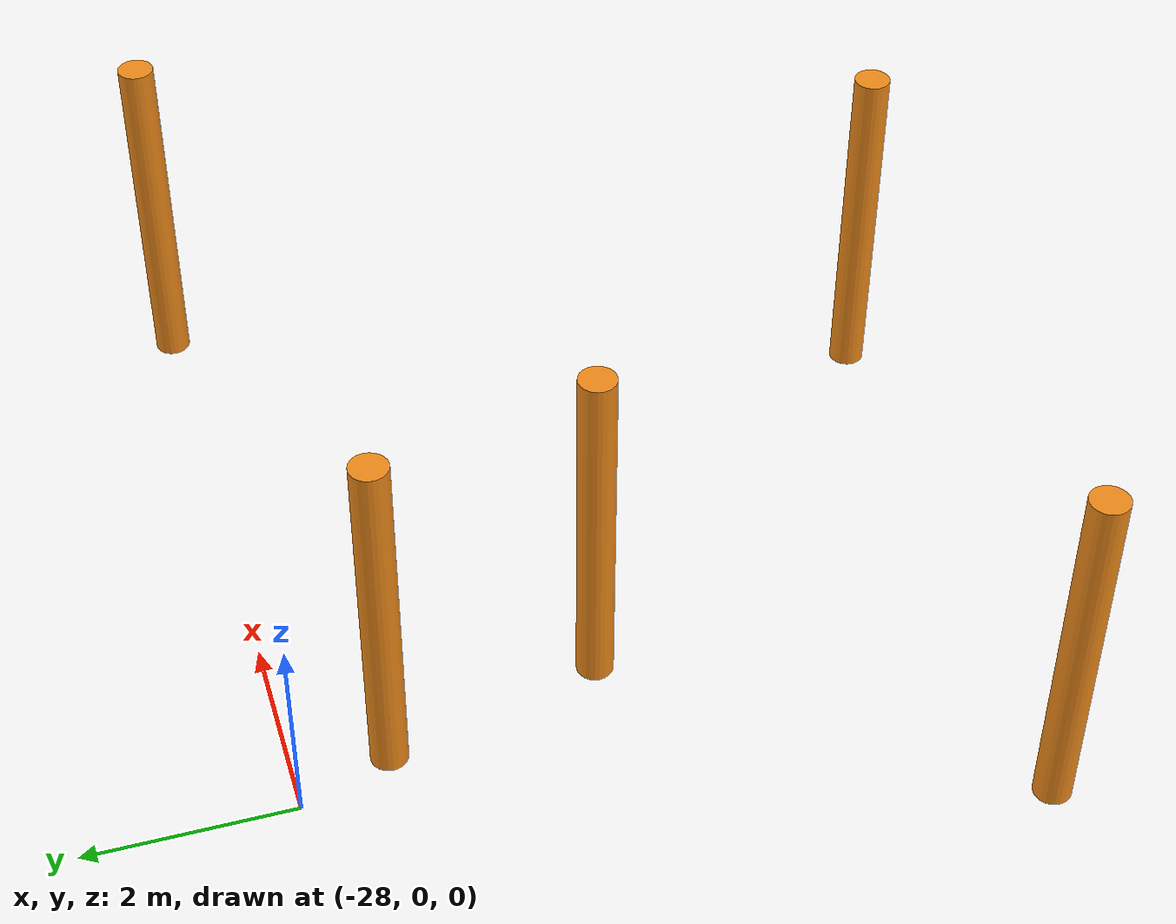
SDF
<sdf version="1.6">
 <model name="Skog">
  <link name="link_1_clone_30">
   <inertial>
    <mass>1</mass>
    <inertia><ixx>0.145833</ixx><ixy>0</ixy><ixz>0</ixz><iyy>0.145833</iyy><iyz>0</iyz><izz>0.125</izz></inertia>
   </inertial>
   <pose>-18.5812 -0.174923 0 0 -0 0</pose>
   <visual name="visual">
    <geometry><cylinder><radius>0.2</radius><length>4</length></cylinder></geometry>
    <material>
     <lighting>1</lighting>
     <script><uri>file://media/materials/scripts/gazebo.material</uri><name>Gazebo/Orange</name></script>
     <shader type="vertex"><normal_map>__default__</normal_map></shader>
     <ambient>0.3 0.3 0.3 1</ambient>
     <diffuse>0.7 0.7 0.7 1</diffuse>
     <specular>0.01 0.01 0.01 1</specular>
     <emissive>0 0 0 1</emissive>
    </material>
   </visual>
   <collision name="collision">
    <geometry><cylinder><radius>0.2</radius><length>4</length></cylinder></geometry>
    <surface>
     <friction>
      <ode><mu>1</mu><mu2>1</mu2><fdir1>0 0 0</fdir1><slip1>0</slip1><slip2>0</slip2></ode>
      <torsional>
       <coefficient>1</coefficient>
       <patch_radius>0</patch_radius>
       <surface_radius>0</surface_radius>
       <use_patch_radius>1</use_patch_radius>
       <ode><slip>0</slip></ode>
      </torsional>
     </friction>
     <bounce><restitution_coefficient>0</restitution_coefficient><threshold>1e+06</threshold></bounce>
     <contact>
      <collide_without_contact>0</collide_without_contact>
      <collide_without_contact_bitmask>1</collide_without_contact_bitmask>
      <collide_bitmask>1</collide_bitmask>
      <ode>
       <soft_cfm>0</soft_cfm>
       <soft_erp>0.2</soft_erp>
       <kp>1e+13</kp>
       <kd>1</kd>
       <max_vel>0.01</max_vel>
       <min_depth>0</min_depth>
      </ode>
      <bullet>
       <split_impulse>1</split_impulse>
       <split_impulse_penetration_threshold>-0.01</split_impulse_penetration_threshold>
       <soft_cfm>0</soft_cfm>
       <soft_erp>0.2</soft_erp>
       <kp>1e+13</kp>
       <kd>1</kd>
      </bullet>
     </contact>
    </surface>
   </collision>
  </link>
  <link name="link_1_clone_31">
   <inertial>
    <mass>1</mass>
    <inertia><ixx>0.145833</ixx><ixy>0</ixy><ixz>0</ixz><iyy>0.145833</iyy><iyz>0</iyz><izz>0.125</izz></inertia>
   </inertial>
   <pose>-21.1425 -8.11004 0 0 -0 0</pose>
   <visual name="visual">
    <geometry><cylinder><radius>0.2</radius><length>4</length></cylinder></geometry>
    <material>
     <lighting>1</lighting>
     <script><uri>file://media/materials/scripts/gazebo.material</uri><name>Gazebo/Orange</name></script>
     <shader type="vertex"><normal_map>__default__</normal_map></shader>
     <ambient>0.3 0.3 0.3 1</ambient>
     <diffuse>0.7 0.7 0.7 1</diffuse>
     <specular>0.01 0.01 0.01 1</specular>
     <emissive>0 0 0 1</emissive>
    </material>
   </visual>
   <collision name="collision">
    <geometry><cylinder><radius>0.2</radius><length>4</length></cylinder></geometry>
    <surface>
     <friction>
      <ode><mu>1</mu><mu2>1</mu2><fdir1>0 0 0</fdir1><slip1>0</slip1><slip2>0</slip2></ode>
      <torsional>
       <coefficient>1</coefficient>
       <patch_radius>0</patch_radius>
       <surface_radius>0</surface_radius>
       <use_patch_radius>1</use_patch_radius>
       <ode><slip>0</slip></ode>
      </torsional>
     </friction>
     <bounce><restitution_coefficient>0</restitution_coefficient><threshold>1e+06</threshold></bounce>
     <contact>
      <collide_without_contact>0</collide_without_contact>
      <collide_without_contact_bitmask>1</collide_without_contact_bitmask>
      <collide_bitmask>1</collide_bitmask>
      <ode>
       <soft_cfm>0</soft_cfm>
       <soft_erp>0.2</soft_erp>
       <kp>1e+13</kp>
       <kd>1</kd>
       <max_vel>0.01</max_vel>
       <min_depth>0</min_depth>
      </ode>
      <bullet>
       <split_impulse>1</split_impulse>
       <split_impulse_penetration_threshold>-0.01</split_impulse_penetration_threshold>
       <soft_cfm>0</soft_cfm>
       <soft_erp>0.2</soft_erp>
       <kp>1e+13</kp>
       <kd>1</kd>
      </bullet>
     </contact>
    </surface>
   </collision>
  </link>
  <link name="link_1_clone_55">
   <inertial>
    <mass>1</mass>
    <inertia><ixx>0.145833</ixx><ixy>0</ixy><ixz>0</ixz><iyy>0.145833</iyy><iyz>0</iyz><izz>0.125</izz></inertia>
   </inertial>
   <pose>-28.2405 -7.5465 0 0 -0 0</pose>
   <visual name="visual">
    <geometry><cylinder><radius>0.2</radius><length>4</length></cylinder></geometry>
    <material>
     <lighting>1</lighting>
     <script><uri>file://media/materials/scripts/gazebo.material</uri><name>Gazebo/Orange</name></script>
     <shader type="vertex"><normal_map>__default__</normal_map></shader>
     <ambient>0.3 0.3 0.3 1</ambient>
     <diffuse>0.7 0.7 0.7 1</diffuse>
     <specular>0.01 0.01 0.01 1</specular>
     <emissive>0 0 0 1</emissive>
    </material>
   </visual>
   <collision name="collision">
    <geometry><cylinder><radius>0.2</radius><length>4</length></cylinder></geometry>
    <surface>
     <friction>
      <ode><mu>1</mu><mu2>1</mu2><fdir1>0 0 0</fdir1><slip1>0</slip1><slip2>0</slip2></ode>
      <torsional>
       <coefficient>1</coefficient>
       <patch_radius>0</patch_radius>
       <surface_radius>0</surface_radius>
       <use_patch_radius>1</use_patch_radius>
       <ode><slip>0</slip></ode>
      </torsional>
     </friction>
     <bounce><restitution_coefficient>0</restitution_coefficient><threshold>1e+06</threshold></bounce>
     <contact>
      <collide_without_contact>0</collide_without_contact>
      <collide_without_contact_bitmask>1</collide_without_contact_bitmask>
      <collide_bitmask>1</collide_bitmask>
      <ode>
       <soft_cfm>0</soft_cfm>
       <soft_erp>0.2</soft_erp>
       <kp>1e+13</kp>
       <kd>1</kd>
       <max_vel>0.01</max_vel>
       <min_depth>0</min_depth>
      </ode>
      <bullet>
       <split_impulse>1</split_impulse>
       <split_impulse_penetration_threshold>-0.01</split_impulse_penetration_threshold>
       <soft_cfm>0</soft_cfm>
       <soft_erp>0.2</soft_erp>
       <kp>1e+13</kp>
       <kd>1</kd>
      </bullet>
     </contact>
    </surface>
   </collision>
  </link>
  <link name="link_1_clone_73">
   <inertial>
    <mass>1</mass>
    <inertia><ixx>0.145833</ixx><ixy>0</ixy><ixz>0</ixz><iyy>0.145833</iyy><iyz>0</iyz><izz>0.125</izz></inertia>
   </inertial>
   <pose>-25.2962 -3.59846 0 0 -0 0</pose>
   <visual name="visual">
    <geometry><cylinder><radius>0.2</radius><length>4</length></cylinder></geometry>
    <material>
     <lighting>1</lighting>
     <script><uri>file://media/materials/scripts/gazebo.material</uri><name>Gazebo/Orange</name></script>
     <shader type="vertex"><normal_map>__default__</normal_map></shader>
     <ambient>0.3 0.3 0.3 1</ambient>
     <diffuse>0.7 0.7 0.7 1</diffuse>
     <specular>0.01 0.01 0.01 1</specular>
     <emissive>0 0 0 1</emissive>
    </material>
   </visual>
   <collision name="collision">
    <geometry><cylinder><radius>0.2</radius><length>4</length></cylinder></geometry>
    <surface>
     <friction>
      <ode><mu>1</mu><mu2>1</mu2><fdir1>0 0 0</fdir1><slip1>0</slip1><slip2>0</slip2></ode>
      <torsional>
       <coefficient>1</coefficient>
       <patch_radius>0</patch_radius>
       <surface_radius>0</surface_radius>
       <use_patch_radius>1</use_patch_radius>
       <ode><slip>0</slip></ode>
      </torsional>
     </friction>
     <bounce><restitution_coefficient>0</restitution_coefficient><threshold>1e+06</threshold></bounce>
     <contact>
      <collide_without_contact>0</collide_without_contact>
      <collide_without_contact_bitmask>1</collide_without_contact_bitmask>
      <collide_bitmask>1</collide_bitmask>
      <ode>
       <soft_cfm>0</soft_cfm>
       <soft_erp>0.2</soft_erp>
       <kp>1e+13</kp>
       <kd>1</kd>
       <max_vel>0.01</max_vel>
       <min_depth>0</min_depth>
      </ode>
      <bullet>
       <split_impulse>1</split_impulse>
       <split_impulse_penetration_threshold>-0.01</split_impulse_penetration_threshold>
       <soft_cfm>0</soft_cfm>
       <soft_erp>0.2</soft_erp>
       <kp>1e+13</kp>
       <kd>1</kd>
      </bullet>
     </contact>
    </surface>
   </collision>
  </link>
  <link name="link_1_clone_74">
   <inertial>
    <mass>1</mass>
    <inertia><ixx>0.145833</ixx><ixy>0</ixy><ixz>0</ixz><iyy>0.145833</iyy><iyz>0</iyz><izz>0.125</izz></inertia>
   </inertial>
   <pose>-25.8982 -1.2092 0 0 -0 0</pose>
   <visual name="visual">
    <geometry><cylinder><radius>0.2</radius><length>4</length></cylinder></geometry>
    <material>
     <lighting>1</lighting>
     <script><uri>file://media/materials/scripts/gazebo.material</uri><name>Gazebo/Orange</name></script>
     <shader type="vertex"><normal_map>__default__</normal_map></shader>
     <ambient>0.3 0.3 0.3 1</ambient>
     <diffuse>0.7 0.7 0.7 1</diffuse>
     <specular>0.01 0.01 0.01 1</specular>
     <emissive>0 0 0 1</emissive>
    </material>
   </visual>
   <collision name="collision">
    <geometry><cylinder><radius>0.2</radius><length>4</length></cylinder></geometry>
    <surface>
     <friction>
      <ode><mu>1</mu><mu2>1</mu2><fdir1>0 0 0</fdir1><slip1>0</slip1><slip2>0</slip2></ode>
      <torsional>
       <coefficient>1</coefficient>
       <patch_radius>0</patch_radius>
       <surface_radius>0</surface_radius>
       <use_patch_radius>1</use_patch_radius>
       <ode><slip>0</slip></ode>
      </torsional>
     </friction>
     <bounce><restitution_coefficient>0</restitution_coefficient><threshold>1e+06</threshold></bounce>
     <contact>
      <collide_without_contact>0</collide_without_contact>
      <collide_without_contact_bitmask>1</collide_without_contact_bitmask>
      <collide_bitmask>1</collide_bitmask>
      <ode>
       <soft_cfm>0</soft_cfm>
       <soft_erp>0.2</soft_erp>
       <kp>1e+13</kp>
       <kd>1</kd>
       <max_vel>0.01</max_vel>
       <min_depth>0</min_depth>
      </ode>
      <bullet>
       <split_impulse>1</split_impulse>
       <split_impulse_penetration_threshold>-0.01</split_impulse_penetration_threshold>
       <soft_cfm>0</soft_cfm>
       <soft_erp>0.2</soft_erp>
       <kp>1e+13</kp>
       <kd>1</kd>
      </bullet>
     </contact>
    </surface>
   </collision>
  </link>
  <static>0</static>
 </model>
</sdf>
